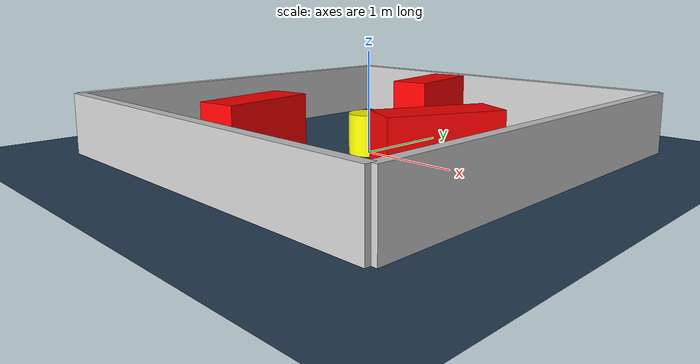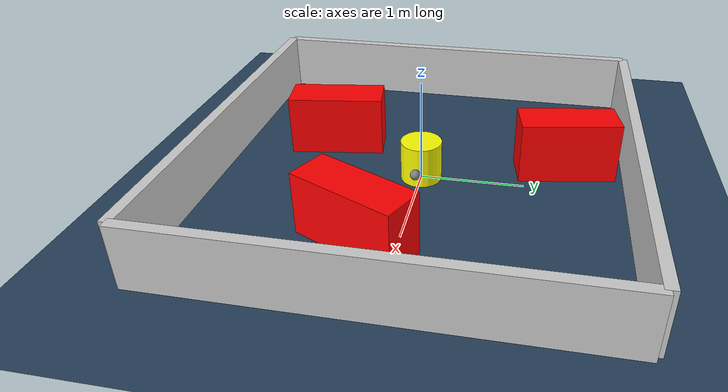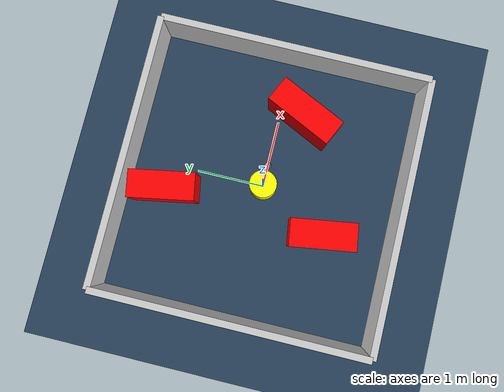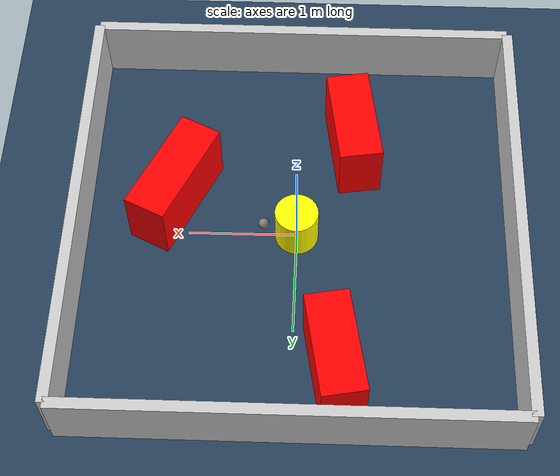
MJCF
<?xml version="1.0" ?>
<mujoco model="generated_environment">
  <option timestep="0.01" integrator="RK4" cone="elliptic"/>
  <default>
    <geom density="1"/>
  </default>
  <asset>
    <texture builtin="gradient" height="3072" rgb1="0.3 0.5 0.7" rgb2="0 0 0" type="skybox" width="512"/>
    <texture builtin="checker" height="300" mark="edge" markrgb="0.8 0.8 0.8" name="groundplane" rgb1="0.2 0.3 0.4" rgb2="0.1 0.2 0.3" type="2d" width="300"/>
    <material name="groundplane" reflectance="0.2" texrepeat="5 5" texture="groundplane" texuniform="true"/>
    <material name="robot" rgba="0.0 1.0 0.0 1"/>
  </asset>
  <worldbody>
    <light dir="0 0 -1" directional="true" pos="0 0 1.5"/>
    <geom condim="4" friction="1.0 0.005 0.001" material="groundplane" name="floor" size="0 0 0.05" type="plane"/>
    <body name="walls">
      <geom name="wall_1" condim="4" pos="-2.0 0.0 0.3" rgba="0.800000011920929 0.800000011920929 0.800000011920929 1.0" size="0.05 2.0 0.3" type="box"/>
      <geom name="wall_2" condim="4" pos="2.0 0.0 0.3" rgba="0.800000011920929 0.800000011920929 0.800000011920929 1.0" size="0.05 2.0 0.3" type="box"/>
      <geom name="wall_3" condim="4" pos="0.0 -2.0 0.3" rgba="0.800000011920929 0.800000011920929 0.800000011920929 1.0" size="2.0 0.05 0.3" type="box"/>
      <geom name="wall_4" condim="4" pos="0.0 2.0 0.3" rgba="0.800000011920929 0.800000011920929 0.800000011920929 1.0" size="2.0 0.05 0.3" type="box"/>
    </body>
    <body name="robot">
      <joint name="joint_x" type="slide" pos="0 0 0" axis="1 0 0"/>
      <joint name="joint_y" type="slide" pos="0 0 0" axis="0 1 0"/>
      <geom name="robot" type="sphere" pos="0.3 0.0 0.2" size="0.05" mass="5." friction="1.0 0.005 0.0001" condim="4" rgba="0.5 0.5 0.5 1.0"/>
      <site name="sensor_ball"/>
    </body>
    <body name="obstacle_movable_1">
      <geom name="obstacle_movable_1" condim="4" pos="0.0 0.0 0.2" euler="0 0 0.0" friction="1.0 0.005 0.001" rgba="1.0 1.0 0.0 1.0" size="0.2 0.2 0.0" type="cylinder" mass="0.1"/>
      <joint type="free"/>
    </body>
    <body name="obstacle_2_static">
      <geom name="obstacle_2_static" condim="4" pos="1.1408310933176014 -0.34868891174540684 0.3" euler="0 0 64.67212432292398" friction="1.0 0.005 0.001" rgba="1 0 0 1" size="0.5226512671189025 0.2 0.3" type="box"/>
    </body>
    <body name="obstacle_3_static">
      <geom name="obstacle_3_static" condim="4" pos="-0.5103332582682754 -0.9837802852932762 0.3" euler="0 0 278.6296182750052" friction="1.0 0.005 0.001" rgba="1 0 0 1" size="0.4730604223842376 0.2 0.3" type="box"/>
    </body>
    <body name="obstacle_4_static">
      <geom name="obstacle_4_static" condim="4" pos="-0.3674346590587694 1.379551697867502 0.3" euler="0 0 280.3099708131229" friction="1.0 0.005 0.001" rgba="1 0 0 1" size="0.4748144432005565 0.2 0.3" type="box"/>
    </body>
  </worldbody>
  <actuator>
    <motor name="actuator_x" joint="joint_x" gear="1" ctrlrange="-1 1"/>
    <motor name="actuator_y" joint="joint_y" gear="1" ctrlrange="-1 1"/>
  </actuator>
</mujoco>
